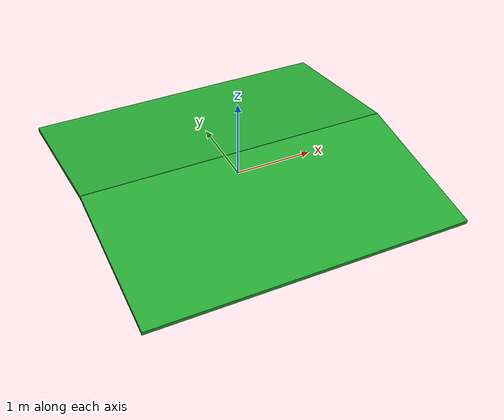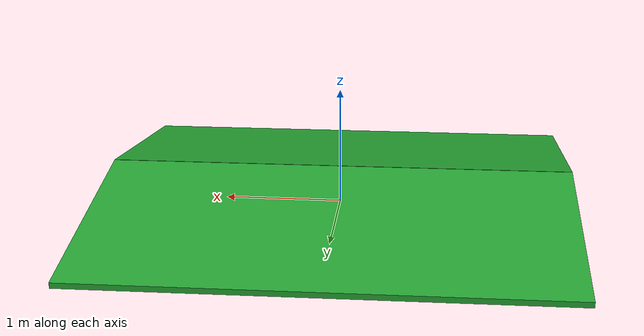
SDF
<?xml version="1.0"?>
<sdf version="1.4">
  <model name="ramp">
    <static>True</static>
    <link name="box1">
      <pose>0 -0.9889 0.1484 0.148 0 0</pose>
      <visual name="box1_vis">
        <geometry>
          <box>
            <size>4 2 0.05</size>
          </box>
        </geometry>
        <material>
          <script>
            <uri>file://media/materials/scripts/gazebo.material</uri>
            <name>Gazebo/Green</name>
          </script>
        </material>
      </visual>
      <collision name="collision">
        <geometry>
          <box>
            <size>4 2 0.05</size>
          </box>
        </geometry>
        <surface>
          <friction>
            <ode>
              <mu>2</mu>
              <mu2>2</mu2>
            </ode>
          </friction>
        </surface>
      </collision>
    </link>
    <link name="box2">
      <pose>0 0.9889 0.1484 -0.148 0 0</pose>
      <visual name="box2_vis">
        <geometry>
          <box>
            <size>4 2 0.05</size>
          </box>
        </geometry>
        <material>
          <script>
            <uri>file://media/materials/scripts/gazebo.material</uri>
            <name>Gazebo/Green</name>
          </script>
        </material>
      </visual>
      <collision name="collision">
        <geometry>
          <box>
            <size>4 2 0.05</size>
          </box>
        </geometry>
        <surface>
          <friction>
            <ode>
              <mu>2</mu>
              <mu2>2</mu2>
            </ode>
          </friction>
        </surface>
      </collision>
    </link>
  </model>
</sdf>
